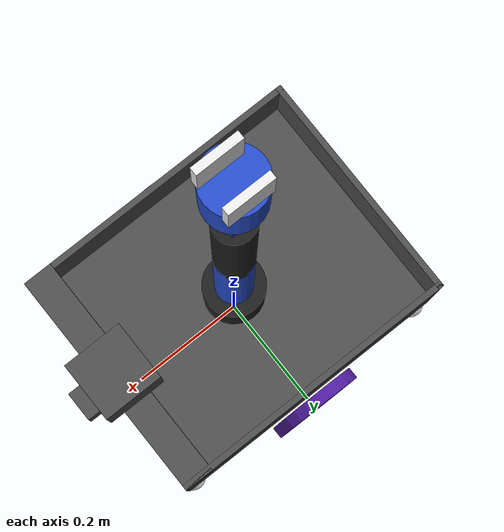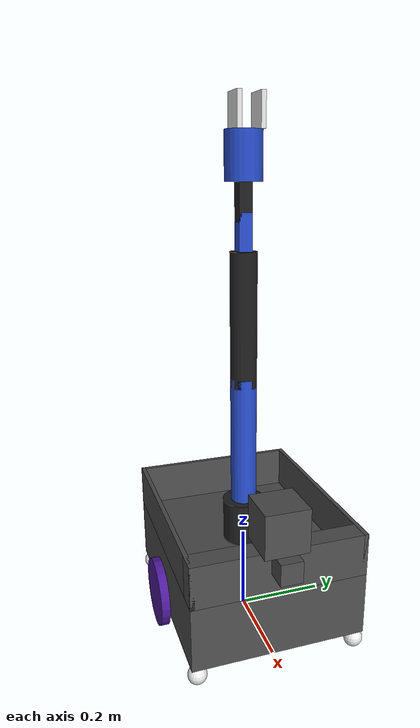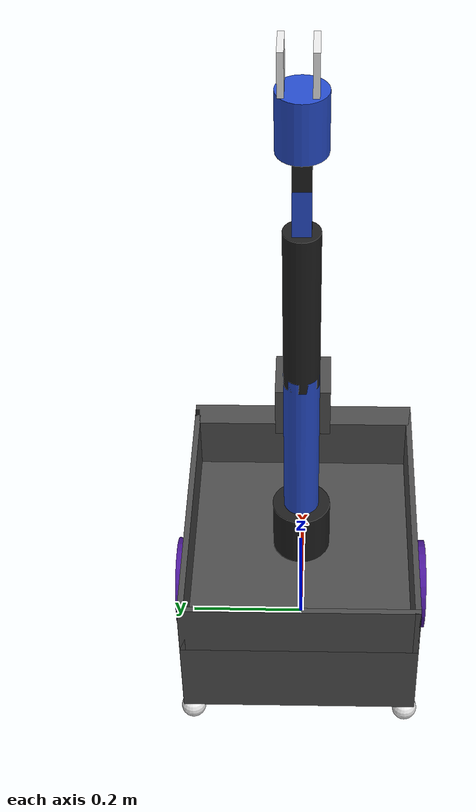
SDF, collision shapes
<sdf version="1.7">
 <model name="mixed_robot">
  <link name="robot_footprint">
   <inertial>
    <pose>0.001803 -0 0.118821 0 -0 0</pose>
    <mass>15.14</mass>
    <inertia>
     <ixx>0.232076</ixx>
     <ixy>-3.91032e-22</ixy>
     <ixz>-0.00406444</ixz>
     <iyy>0.352594</iyy>
     <iyz>-2.86479e-22</iyz>
     <izz>0.522614</izz>
    </inertia>
   </inertial>
   <sensor name="camera1" type="depth">
    <always_on>1</always_on>
    <update_rate>50</update_rate>
    <visualize>1</visualize>
    <camera>
     <horizontal_fov>1.047</horizontal_fov>
     <image><width>800</width><height>800</height><format>R8G8B8</format></image>
     <depth_camera><output>depths</output></depth_camera>
     <clip><near>0.1</near><far>20</far></clip>
     <noise><type>gaussian</type><mean>0</mean><stddev>0.007</stddev></noise>
    </camera>
    <plugin name="camera_controller" filename="libgazebo_ros_openni_kinect.so">
     <alwaysOn>1</alwaysOn>
     <updateRate>50.0</updateRate>
     <cameraName>camera</cameraName>
     <frameName>camera_link_optical</frameName>
     <imageTopicName>rgb/image_raw</imageTopicName>
     <depthImageTopicName>depth_registered/image_raw</depthImageTopicName>
     <pointCloudTopicName>depth_registered/points</pointCloudTopicName>
     <cameraInfoTopicName>rgb/camera_info</cameraInfoTopicName>
     <depthImageCameraInfoTopicName>depth_registered/camera_info</depthImageCameraInfoTopicName>
     <pointCloudCutoff>0.4</pointCloudCutoff>
     <hackBaseline>0.07</hackBaseline>
     <distortionK1>0.0</distortionK1>
     <distortionK2>0.0</distortionK2>
     <distortionK3>0.0</distortionK3>
     <distortionT1>0.0</distortionT1>
     <distortionT2>0.0</distortionT2>
     <CxPrime>0.0</CxPrime>
     <Cx>0.0</Cx>
     <Cy>0.0</Cy>
     <focalLength>0.0</focalLength>
     <robotNamespace>/</robotNamespace>
    </plugin>
    <pose>0.275 0 0.2675 0 -0 0</pose>
   </sensor>
   <sensor name="head_hokuyo_sensor" type="ray">
    <visualize>0</visualize>
    <update_rate>50</update_rate>
    <ray>
     <scan>
      <horizontal>
       <samples>720</samples>
       <resolution>1</resolution>
       <min_angle>-1.5708</min_angle>
       <max_angle>1.5708</max_angle>
      </horizontal>
      <vertical><samples>1</samples><min_angle>0</min_angle><max_angle>0</max_angle></vertical>
     </scan>
     <range><min>0.075</min><max>30</max><resolution>0.01</resolution></range>
     <noise><type>gaussian</type><mean>0</mean><stddev>0.01</stddev></noise>
    </ray>
    <plugin name="gazebo_ros_head_hokuyo_controller" filename="libgazebo_ros_laser.so">
     <topicName>scan</topicName>
     <frameName>hokuyo</frameName>
     <robotNamespace>/</robotNamespace>
    </plugin>
    <pose>0.225 0 0.3425 0 -0 0</pose>
   </sensor>
   <visual name="robot_footprint_fixed_joint_lump__base_chassis_visual_visual">
    <pose>0 0 0.1175 0 -0 0</pose>
    <geometry><box><size>0.5 0.4 0.15</size></box></geometry>
    <material>
     <script><name>Gazebo/DarkGrey</name><uri>file://media/materials/scripts/gazebo.material</uri></script>
     <shader type="pixel"/>
    </material>
   </visual>
   <visual name="robot_footprint_fixed_joint_lump__back_container_side_visual_visual_1">
    <pose>-0.245 0 0.2425 0 -0 0</pose>
    <geometry><box><size>0.01 0.4 0.1</size></box></geometry>
    <material><shader type="pixel"/></material>
   </visual>
   <visual name="robot_footprint_fixed_joint_lump__camera_link_visual_visual_2">
    <pose>0.275 0 0.2675 0 -0 0</pose>
    <geometry><box><size>0.05 0.05 0.05</size></box></geometry>
    <material>
     <script><name>Gazebo/Grey</name><uri>file://media/materials/scripts/gazebo.material</uri></script>
     <shader type="pixel"/>
    </material>
   </visual>
   <visual name="robot_footprint_fixed_joint_lump__front_container_side_visual_visual_3">
    <pose>0.225 0 0.2425 0 -0 0</pose>
    <geometry><box><size>0.05 0.4 0.1</size></box></geometry>
    <material><shader type="pixel"/></material>
   </visual>
   <visual name="robot_footprint_fixed_joint_lump__hokuyo_visual_visual_4">
    <pose>0.225 0 0.3425 0 -0 0</pose>
    <geometry>
     <mesh><scale>1 1 1</scale><uri>/home/lelyasa/project_ws/src/robot_2/models/meshes/hokuyo.dae</uri></mesh>
    </geometry>
    <material><shader type="pixel"/></material>
   </visual>
   <visual name="robot_footprint_fixed_joint_lump__left_container_side_visual_visual_5">
    <pose>0 0.195 0.2425 0 -0 0</pose>
    <geometry><box><size>0.5 0.01 0.1</size></box></geometry>
    <material><shader type="pixel"/></material>
   </visual>
   <visual name="robot_footprint_fixed_joint_lump__right_container_side_visual_visual_6">
    <pose>0 -0.195 0.2425 0 -0 0</pose>
    <geometry><box><size>0.5 0.01 0.1</size></box></geometry>
    <material><shader type="pixel"/></material>
   </visual>
   <collision name="robot_footprint_fixed_joint_lump__collision_collision">
    <pose>0 0 0.1175 0 -0 0</pose>
    <geometry><box><size>0.5 0.4 0.15</size></box></geometry>
    <surface>
     <friction>
      <ode><mu>1</mu><mu2>1</mu2><fdir1>0 0 0</fdir1><slip1>0</slip1><slip2>0</slip2></ode>
      <torsional>
       <coefficient>1</coefficient>
       <patch_radius>0</patch_radius>
       <surface_radius>0</surface_radius>
       <use_patch_radius>1</use_patch_radius>
       <ode><slip>0</slip></ode>
      </torsional>
     </friction>
     <bounce><restitution_coefficient>0</restitution_coefficient><threshold>1e+06</threshold></bounce>
     <contact>
      <collide_without_contact>0</collide_without_contact>
      <collide_without_contact_bitmask>1</collide_without_contact_bitmask>
      <collide_bitmask>1</collide_bitmask>
      <ode>
       <soft_cfm>0</soft_cfm>
       <soft_erp>0.2</soft_erp>
       <kp>1e+13</kp>
       <kd>1</kd>
       <max_vel>0.01</max_vel>
       <min_depth>0</min_depth>
      </ode>
      <bullet>
       <split_impulse>1</split_impulse>
       <split_impulse_penetration_threshold>-0.01</split_impulse_penetration_threshold>
       <soft_cfm>0</soft_cfm>
       <soft_erp>0.2</soft_erp>
       <kp>1e+13</kp>
       <kd>1</kd>
      </bullet>
     </contact>
    </surface>
   </collision>
   <collision name="robot_footprint_fixed_joint_lump__collision_collision_3">
    <pose>0.225 0 0.2425 0 -0 0</pose>
    <geometry><box><size>0.05 0.4 0.1</size></box></geometry>
    <surface>
     <friction>
      <ode><mu>1</mu><mu2>1</mu2><fdir1>0 0 0</fdir1><slip1>0</slip1><slip2>0</slip2></ode>
      <torsional>
       <coefficient>1</coefficient>
       <patch_radius>0</patch_radius>
       <surface_radius>0</surface_radius>
       <use_patch_radius>1</use_patch_radius>
       <ode><slip>0</slip></ode>
      </torsional>
     </friction>
     <bounce><restitution_coefficient>0</restitution_coefficient><threshold>1e+06</threshold></bounce>
     <contact>
      <collide_without_contact>0</collide_without_contact>
      <collide_without_contact_bitmask>1</collide_without_contact_bitmask>
      <collide_bitmask>1</collide_bitmask>
      <ode>
       <soft_cfm>0</soft_cfm>
       <soft_erp>0.2</soft_erp>
       <kp>1e+13</kp>
       <kd>1</kd>
       <max_vel>0.01</max_vel>
       <min_depth>0</min_depth>
      </ode>
      <bullet>
       <split_impulse>1</split_impulse>
       <split_impulse_penetration_threshold>-0.01</split_impulse_penetration_threshold>
       <soft_cfm>0</soft_cfm>
       <soft_erp>0.2</soft_erp>
       <kp>1e+13</kp>
       <kd>1</kd>
      </bullet>
     </contact>
    </surface>
   </collision>
   <collision name="robot_footprint_fixed_joint_lump__collision_collision_1">
    <pose>-0.245 0 0.2425 0 -0 0</pose>
    <geometry><box><size>0.01 0.4 0.1</size></box></geometry>
    <surface>
     <friction>
      <ode><mu>1</mu><mu2>1</mu2><fdir1>0 0 0</fdir1><slip1>0</slip1><slip2>0</slip2></ode>
      <torsional>
       <coefficient>1</coefficient>
       <patch_radius>0</patch_radius>
       <surface_radius>0</surface_radius>
       <use_patch_radius>1</use_patch_radius>
       <ode><slip>0</slip></ode>
      </torsional>
     </friction>
     <bounce><restitution_coefficient>0</restitution_coefficient><threshold>1e+06</threshold></bounce>
     <contact>
      <collide_without_contact>0</collide_without_contact>
      <collide_without_contact_bitmask>1</collide_without_contact_bitmask>
      <collide_bitmask>1</collide_bitmask>
      <ode>
       <soft_cfm>0</soft_cfm>
       <soft_erp>0.2</soft_erp>
       <kp>1e+13</kp>
       <kd>1</kd>
       <max_vel>0.01</max_vel>
       <min_depth>0</min_depth>
      </ode>
      <bullet>
       <split_impulse>1</split_impulse>
       <split_impulse_penetration_threshold>-0.01</split_impulse_penetration_threshold>
       <soft_cfm>0</soft_cfm>
       <soft_erp>0.2</soft_erp>
       <kp>1e+13</kp>
       <kd>1</kd>
      </bullet>
     </contact>
    </surface>
   </collision>
   <collision name="robot_footprint_fixed_joint_lump__camera_collision_collision_2">
    <pose>0.275 0 0.2675 0 -0 0</pose>
    <geometry><box><size>0.05 0.05 0.05</size></box></geometry>
    <surface>
     <friction>
      <ode><mu>1</mu><mu2>1</mu2><fdir1>0 0 0</fdir1><slip1>0</slip1><slip2>0</slip2></ode>
      <torsional>
       <coefficient>1</coefficient>
       <patch_radius>0</patch_radius>
       <surface_radius>0</surface_radius>
       <use_patch_radius>1</use_patch_radius>
       <ode><slip>0</slip></ode>
      </torsional>
     </friction>
     <bounce><restitution_coefficient>0</restitution_coefficient><threshold>1e+06</threshold></bounce>
     <contact>
      <collide_without_contact>0</collide_without_contact>
      <collide_without_contact_bitmask>1</collide_without_contact_bitmask>
      <collide_bitmask>1</collide_bitmask>
      <ode>
       <soft_cfm>0</soft_cfm>
       <soft_erp>0.2</soft_erp>
       <kp>1e+13</kp>
       <kd>1</kd>
       <max_vel>0.01</max_vel>
       <min_depth>0</min_depth>
      </ode>
      <bullet>
       <split_impulse>1</split_impulse>
       <split_impulse_penetration_threshold>-0.01</split_impulse_penetration_threshold>
       <soft_cfm>0</soft_cfm>
       <soft_erp>0.2</soft_erp>
       <kp>1e+13</kp>
       <kd>1</kd>
      </bullet>
     </contact>
    </surface>
   </collision>
   <collision name="robot_footprint_fixed_joint_lump__hokuyo_collision_collision_4">
    <pose>0.225 0 0.3425 0 -0 0</pose>
    <geometry><box><size>0.1 0.1 0.1</size></box></geometry>
    <surface>
     <friction>
      <ode><mu>1</mu><mu2>1</mu2><fdir1>0 0 0</fdir1><slip1>0</slip1><slip2>0</slip2></ode>
      <torsional>
       <coefficient>1</coefficient>
       <patch_radius>0</patch_radius>
       <surface_radius>0</surface_radius>
       <use_patch_radius>1</use_patch_radius>
       <ode><slip>0</slip></ode>
      </torsional>
     </friction>
     <bounce><restitution_coefficient>0</restitution_coefficient><threshold>1e+06</threshold></bounce>
     <contact>
      <collide_without_contact>0</collide_without_contact>
      <collide_without_contact_bitmask>1</collide_without_contact_bitmask>
      <collide_bitmask>1</collide_bitmask>
      <ode>
       <soft_cfm>0</soft_cfm>
       <soft_erp>0.2</soft_erp>
       <kp>1e+13</kp>
       <kd>1</kd>
       <max_vel>0.01</max_vel>
       <min_depth>0</min_depth>
      </ode>
      <bullet>
       <split_impulse>1</split_impulse>
       <split_impulse_penetration_threshold>-0.01</split_impulse_penetration_threshold>
       <soft_cfm>0</soft_cfm>
       <soft_erp>0.2</soft_erp>
       <kp>1e+13</kp>
       <kd>1</kd>
      </bullet>
     </contact>
    </surface>
   </collision>
   <collision name="robot_footprint_fixed_joint_lump__collision_collision_5">
    <pose>0 0.195 0.2425 0 -0 0</pose>
    <geometry><box><size>0.5 0.01 0.1</size></box></geometry>
    <surface>
     <friction>
      <ode><mu>1</mu><mu2>1</mu2><fdir1>0 0 0</fdir1><slip1>0</slip1><slip2>0</slip2></ode>
      <torsional>
       <coefficient>1</coefficient>
       <patch_radius>0</patch_radius>
       <surface_radius>0</surface_radius>
       <use_patch_radius>1</use_patch_radius>
       <ode><slip>0</slip></ode>
      </torsional>
     </friction>
     <bounce><restitution_coefficient>0</restitution_coefficient><threshold>1e+06</threshold></bounce>
     <contact>
      <collide_without_contact>0</collide_without_contact>
      <collide_without_contact_bitmask>1</collide_without_contact_bitmask>
      <collide_bitmask>1</collide_bitmask>
      <ode>
       <soft_cfm>0</soft_cfm>
       <soft_erp>0.2</soft_erp>
       <kp>1e+13</kp>
       <kd>1</kd>
       <max_vel>0.01</max_vel>
       <min_depth>0</min_depth>
      </ode>
      <bullet>
       <split_impulse>1</split_impulse>
       <split_impulse_penetration_threshold>-0.01</split_impulse_penetration_threshold>
       <soft_cfm>0</soft_cfm>
       <soft_erp>0.2</soft_erp>
       <kp>1e+13</kp>
       <kd>1</kd>
      </bullet>
     </contact>
    </surface>
   </collision>
   <collision name="robot_footprint_fixed_joint_lump__collision_collision_6">
    <pose>0 -0.195 0.2425 0 -0 0</pose>
    <geometry><box><size>0.5 0.01 0.1</size></box></geometry>
    <surface>
     <friction>
      <ode><mu>1</mu><mu2>1</mu2><fdir1>0 0 0</fdir1><slip1>0</slip1><slip2>0</slip2></ode>
      <torsional>
       <coefficient>1</coefficient>
       <patch_radius>0</patch_radius>
       <surface_radius>0</surface_radius>
       <use_patch_radius>1</use_patch_radius>
       <ode><slip>0</slip></ode>
      </torsional>
     </friction>
     <bounce><restitution_coefficient>0</restitution_coefficient><threshold>1e+06</threshold></bounce>
     <contact>
      <collide_without_contact>0</collide_without_contact>
      <collide_without_contact_bitmask>1</collide_without_contact_bitmask>
      <collide_bitmask>1</collide_bitmask>
      <ode>
       <soft_cfm>0</soft_cfm>
       <soft_erp>0.2</soft_erp>
       <kp>1e+13</kp>
       <kd>1</kd>
       <max_vel>0.01</max_vel>
       <min_depth>0</min_depth>
      </ode>
      <bullet>
       <split_impulse>1</split_impulse>
       <split_impulse_penetration_threshold>-0.01</split_impulse_penetration_threshold>
       <soft_cfm>0</soft_cfm>
       <soft_erp>0.2</soft_erp>
       <kp>1e+13</kp>
       <kd>1</kd>
      </bullet>
     </contact>
    </surface>
   </collision>
  </link>
  <link name="back_left_caster">
   <pose>-0.234375 0.184375 0.02125 0 -0 0</pose>
   <inertial>
    <mass>0.1</mass>
    <inertia>
     <ixx>1.80625e-05</ixx>
     <ixy>0</ixy>
     <ixz>0</ixz>
     <iyy>1.80625e-05</iyy>
     <iyz>0</iyz>
     <izz>1.80625e-05</izz>
    </inertia>
   </inertial>
   <visual name="back_left_caster_visual_visual">
    <geometry><sphere><radius>0.02125</radius></sphere></geometry>
    <material>
     <script><name>Gazebo/White</name><uri>file://media/materials/scripts/gazebo.material</uri></script>
     <shader type="pixel"/>
    </material>
   </visual>
   <collision name="back_left_caster_fixed_joint_lump__collision_collision">
    <geometry><sphere><radius>0.02125</radius></sphere></geometry>
    <surface>
     <friction>
      <ode><mu>1</mu><mu2>1</mu2><fdir1>0 0 0</fdir1><slip1>0</slip1><slip2>0</slip2></ode>
      <torsional>
       <coefficient>1</coefficient>
       <patch_radius>0</patch_radius>
       <surface_radius>0</surface_radius>
       <use_patch_radius>1</use_patch_radius>
       <ode><slip>0</slip></ode>
      </torsional>
     </friction>
     <bounce><restitution_coefficient>0</restitution_coefficient><threshold>1e+06</threshold></bounce>
     <contact>
      <collide_without_contact>0</collide_without_contact>
      <collide_without_contact_bitmask>1</collide_without_contact_bitmask>
      <collide_bitmask>1</collide_bitmask>
      <ode>
       <soft_cfm>0</soft_cfm>
       <soft_erp>0.2</soft_erp>
       <kp>1e+13</kp>
       <kd>1</kd>
       <max_vel>0.01</max_vel>
       <min_depth>0</min_depth>
      </ode>
      <bullet>
       <split_impulse>1</split_impulse>
       <split_impulse_penetration_threshold>-0.01</split_impulse_penetration_threshold>
       <soft_cfm>0</soft_cfm>
       <soft_erp>0.2</soft_erp>
       <kp>1e+13</kp>
       <kd>1</kd>
      </bullet>
     </contact>
    </surface>
   </collision>
  </link>
  <link name="back_right_caster">
   <pose>-0.234375 -0.184375 0.02125 0 -0 0</pose>
   <inertial>
    <mass>0.1</mass>
    <inertia>
     <ixx>1.80625e-05</ixx>
     <ixy>0</ixy>
     <ixz>0</ixz>
     <iyy>1.80625e-05</iyy>
     <iyz>0</iyz>
     <izz>1.80625e-05</izz>
    </inertia>
   </inertial>
   <visual name="back_right_caster_visual_visual">
    <geometry><sphere><radius>0.02125</radius></sphere></geometry>
    <material>
     <script><name>Gazebo/White</name><uri>file://media/materials/scripts/gazebo.material</uri></script>
     <shader type="pixel"/>
    </material>
   </visual>
   <collision name="back_right_caster_fixed_joint_lump__collision_collision">
    <geometry><sphere><radius>0.02125</radius></sphere></geometry>
    <surface>
     <friction>
      <ode><mu>1</mu><mu2>1</mu2><fdir1>0 0 0</fdir1><slip1>0</slip1><slip2>0</slip2></ode>
      <torsional>
       <coefficient>1</coefficient>
       <patch_radius>0</patch_radius>
       <surface_radius>0</surface_radius>
       <use_patch_radius>1</use_patch_radius>
       <ode><slip>0</slip></ode>
      </torsional>
     </friction>
     <bounce><restitution_coefficient>0</restitution_coefficient><threshold>1e+06</threshold></bounce>
     <contact>
      <collide_without_contact>0</collide_without_contact>
      <collide_without_contact_bitmask>1</collide_without_contact_bitmask>
      <collide_bitmask>1</collide_bitmask>
      <ode>
       <soft_cfm>0</soft_cfm>
       <soft_erp>0.2</soft_erp>
       <kp>1e+13</kp>
       <kd>1</kd>
       <max_vel>0.01</max_vel>
       <min_depth>0</min_depth>
      </ode>
      <bullet>
       <split_impulse>1</split_impulse>
       <split_impulse_penetration_threshold>-0.01</split_impulse_penetration_threshold>
       <soft_cfm>0</soft_cfm>
       <soft_erp>0.2</soft_erp>
       <kp>1e+13</kp>
       <kd>1</kd>
      </bullet>
     </contact>
    </surface>
   </collision>
  </link>
  <link name="finger1">
   <pose>-0 -0.025 1.1225 0 -0 0</pose>
   <inertial>
    <mass>0.1</mass>
    <inertia><ixx>0.03</ixx><ixy>0</ixy><ixz>0</ixz><iyy>0.03</iyy><iyz>0</iyz><izz>0.03</izz></inertia>
   </inertial>
   <slip1>0</slip1>
   <slip2>0</slip2>
   <torsional><ode><coefficient>1000</coefficient><slip>0</slip></ode></torsional>
   <visual name="finger1_visual">
    <pose>0.005 0.005 0.025 0 -0 0</pose>
    <geometry><box><size>0.06 0.01 0.07</size></box></geometry>
    <material>
     <script><name>Gazebo/White</name><uri>file://media/materials/scripts/gazebo.material</uri></script>
     <shader type="pixel"/>
    </material>
   </visual>
   <collision name="finger1_collision">
    <pose>0.005 0.005 0.025 0 -0 0</pose>
    <geometry><box><size>0.06 0.01 0.07</size></box></geometry>
    <surface>
     <friction>
      <ode><mu>1000</mu><mu2>1000</mu2><fdir1>0 0 0</fdir1><slip1>0</slip1><slip2>0</slip2></ode>
      <torsional>
       <coefficient>1</coefficient>
       <patch_radius>0</patch_radius>
       <surface_radius>0</surface_radius>
       <use_patch_radius>1</use_patch_radius>
       <ode><slip>0</slip></ode>
      </torsional>
     </friction>
     <bounce><restitution_coefficient>0</restitution_coefficient><threshold>1e+06</threshold></bounce>
     <contact>
      <collide_without_contact>0</collide_without_contact>
      <collide_without_contact_bitmask>1</collide_without_contact_bitmask>
      <collide_bitmask>1</collide_bitmask>
      <ode>
       <soft_cfm>0</soft_cfm>
       <soft_erp>0.2</soft_erp>
       <kp>1e+06</kp>
       <kd>1</kd>
       <max_vel>0</max_vel>
       <min_depth>0.001</min_depth>
      </ode>
      <bullet>
       <split_impulse>1</split_impulse>
       <split_impulse_penetration_threshold>-0.01</split_impulse_penetration_threshold>
       <soft_cfm>0</soft_cfm>
       <soft_erp>0.2</soft_erp>
       <kp>1e+06</kp>
       <kd>1</kd>
      </bullet>
     </contact>
    </surface>
   </collision>
  </link>
  <link name="finger2">
   <pose>0 0.025 1.1225 0 -0 0</pose>
   <inertial>
    <mass>0.1</mass>
    <inertia><ixx>0.03</ixx><ixy>0</ixy><ixz>0</ixz><iyy>0.03</iyy><iyz>0</iyz><izz>0.03</izz></inertia>
   </inertial>
   <slip1>0</slip1>
   <slip2>0</slip2>
   <torsional><ode><coefficient>1000</coefficient><slip>0</slip></ode></torsional>
   <visual name="finger2_visual">
    <pose>0.005 0.005 0.025 0 -0 0</pose>
    <geometry><box><size>0.06 0.01 0.07</size></box></geometry>
    <material>
     <script><name>Gazebo/White</name><uri>file://media/materials/scripts/gazebo.material</uri></script>
     <shader type="pixel"/>
    </material>
   </visual>
   <collision name="finger2_collision">
    <pose>0.005 0.005 0.025 0 -0 0</pose>
    <geometry><box><size>0.06 0.01 0.07</size></box></geometry>
    <surface>
     <friction>
      <ode><mu>1000</mu><mu2>1000</mu2><fdir1>0 0 0</fdir1><slip1>0</slip1><slip2>0</slip2></ode>
      <torsional>
       <coefficient>1</coefficient>
       <patch_radius>0</patch_radius>
       <surface_radius>0</surface_radius>
       <use_patch_radius>1</use_patch_radius>
       <ode><slip>0</slip></ode>
      </torsional>
     </friction>
     <bounce><restitution_coefficient>0</restitution_coefficient><threshold>1e+06</threshold></bounce>
     <contact>
      <collide_without_contact>0</collide_without_contact>
      <collide_without_contact_bitmask>1</collide_without_contact_bitmask>
      <collide_bitmask>1</collide_bitmask>
      <ode>
       <soft_cfm>0</soft_cfm>
       <soft_erp>0.2</soft_erp>
       <kp>1e+06</kp>
       <kd>1</kd>
       <max_vel>0</max_vel>
       <min_depth>0.001</min_depth>
      </ode>
      <bullet>
       <split_impulse>1</split_impulse>
       <split_impulse_penetration_threshold>-0.01</split_impulse_penetration_threshold>
       <soft_cfm>0</soft_cfm>
       <soft_erp>0.2</soft_erp>
       <kp>1e+06</kp>
       <kd>1</kd>
      </bullet>
     </contact>
    </surface>
   </collision>
  </link>
  <link name="front_left_caster">
   <pose>0.234375 0.184375 0.02125 0 -0 0</pose>
   <inertial>
    <mass>0.1</mass>
    <inertia>
     <ixx>1.80625e-05</ixx>
     <ixy>0</ixy>
     <ixz>0</ixz>
     <iyy>1.80625e-05</iyy>
     <iyz>0</iyz>
     <izz>1.80625e-05</izz>
    </inertia>
   </inertial>
   <visual name="front_left_caster_visual_visual">
    <geometry><sphere><radius>0.02125</radius></sphere></geometry>
    <material>
     <script><name>Gazebo/White</name><uri>file://media/materials/scripts/gazebo.material</uri></script>
     <shader type="pixel"/>
    </material>
   </visual>
   <collision name="front_left_caster_fixed_joint_lump__collision_collision">
    <geometry><sphere><radius>0.02125</radius></sphere></geometry>
    <surface>
     <friction>
      <ode><mu>1</mu><mu2>1</mu2><fdir1>0 0 0</fdir1><slip1>0</slip1><slip2>0</slip2></ode>
      <torsional>
       <coefficient>1</coefficient>
       <patch_radius>0</patch_radius>
       <surface_radius>0</surface_radius>
       <use_patch_radius>1</use_patch_radius>
       <ode><slip>0</slip></ode>
      </torsional>
     </friction>
     <bounce><restitution_coefficient>0</restitution_coefficient><threshold>1e+06</threshold></bounce>
     <contact>
      <collide_without_contact>0</collide_without_contact>
      <collide_without_contact_bitmask>1</collide_without_contact_bitmask>
      <collide_bitmask>1</collide_bitmask>
      <ode>
       <soft_cfm>0</soft_cfm>
       <soft_erp>0.2</soft_erp>
       <kp>1e+13</kp>
       <kd>1</kd>
       <max_vel>0.01</max_vel>
       <min_depth>0</min_depth>
      </ode>
      <bullet>
       <split_impulse>1</split_impulse>
       <split_impulse_penetration_threshold>-0.01</split_impulse_penetration_threshold>
       <soft_cfm>0</soft_cfm>
       <soft_erp>0.2</soft_erp>
       <kp>1e+13</kp>
       <kd>1</kd>
      </bullet>
     </contact>
    </surface>
   </collision>
  </link>
  <link name="front_right_caster">
   <pose>0.234375 -0.184375 0.02125 0 -0 0</pose>
   <inertial>
    <mass>0.1</mass>
    <inertia>
     <ixx>1.80625e-05</ixx>
     <ixy>0</ixy>
     <ixz>0</ixz>
     <iyy>1.80625e-05</iyy>
     <iyz>0</iyz>
     <izz>1.80625e-05</izz>
    </inertia>
   </inertial>
   <visual name="front_right_caster_visual_visual">
    <geometry><sphere><radius>0.02125</radius></sphere></geometry>
    <material>
     <script><name>Gazebo/White</name><uri>file://media/materials/scripts/gazebo.material</uri></script>
     <shader type="pixel"/>
    </material>
   </visual>
   <collision name="front_right_caster_fixed_joint_lump__collision_collision">
    <geometry><sphere><radius>0.02125</radius></sphere></geometry>
    <surface>
     <friction>
      <ode><mu>1</mu><mu2>1</mu2><fdir1>0 0 0</fdir1><slip1>0</slip1><slip2>0</slip2></ode>
      <torsional>
       <coefficient>1</coefficient>
       <patch_radius>0</patch_radius>
       <surface_radius>0</surface_radius>
       <use_patch_radius>1</use_patch_radius>
       <ode><slip>0</slip></ode>
      </torsional>
     </friction>
     <bounce><restitution_coefficient>0</restitution_coefficient><threshold>1e+06</threshold></bounce>
     <contact>
      <collide_without_contact>0</collide_without_contact>
      <collide_without_contact_bitmask>1</collide_without_contact_bitmask>
      <collide_bitmask>1</collide_bitmask>
      <ode>
       <soft_cfm>0</soft_cfm>
       <soft_erp>0.2</soft_erp>
       <kp>1e+13</kp>
       <kd>1</kd>
       <max_vel>0.01</max_vel>
       <min_depth>0</min_depth>
      </ode>
      <bullet>
       <split_impulse>1</split_impulse>
       <split_impulse_penetration_threshold>-0.01</split_impulse_penetration_threshold>
       <soft_cfm>0</soft_cfm>
       <soft_erp>0.2</soft_erp>
       <kp>1e+13</kp>
       <kd>1</kd>
      </bullet>
     </contact>
    </surface>
   </collision>
  </link>
  <link name="left_wheel">
   <pose>-0 0.215 0.08 0 -0 0</pose>
   <inertial>
    <pose>0 0 0 -0 1.5707 1.5707</pose>
    <mass>1</mass>
    <inertia>
     <ixx>0.00163333</ixx>
     <ixy>0</ixy>
     <ixz>0</ixz>
     <iyy>0.00163333</iyy>
     <iyz>0</iyz>
     <izz>0.0032</izz>
    </inertia>
   </inertial>
   <visual name="left_wheel_visual_visual">
    <pose>0 0 0 1.56615 1.57079 3.13685</pose>
    <geometry><cylinder><length>0.02</length><radius>0.08</radius></cylinder></geometry>
    <material>
     <script><name>Gazebo/Indigo</name><uri>file://media/materials/scripts/gazebo.material</uri></script>
     <shader type="pixel"/>
    </material>
   </visual>
   <collision name="left_wheel_fixed_joint_lump__collision_collision">
    <pose>0 0 0 1.57089 1.57079 -3.14159</pose>
    <geometry><cylinder><radius>0.08</radius><length>0.02</length></cylinder></geometry>
    <surface>
     <friction>
      <ode><mu>1</mu><mu2>1</mu2><fdir1>0 0 0</fdir1><slip1>0</slip1><slip2>0</slip2></ode>
      <torsional>
       <coefficient>1</coefficient>
       <patch_radius>0</patch_radius>
       <surface_radius>0</surface_radius>
       <use_patch_radius>1</use_patch_radius>
       <ode><slip>0</slip></ode>
      </torsional>
     </friction>
     <bounce><restitution_coefficient>0</restitution_coefficient><threshold>1e+06</threshold></bounce>
     <contact>
      <collide_without_contact>0</collide_without_contact>
      <collide_without_contact_bitmask>1</collide_without_contact_bitmask>
      <collide_bitmask>1</collide_bitmask>
      <ode>
       <soft_cfm>0</soft_cfm>
       <soft_erp>0.2</soft_erp>
       <kp>1e+13</kp>
       <kd>1</kd>
       <max_vel>0.01</max_vel>
       <min_depth>0</min_depth>
      </ode>
      <bullet>
       <split_impulse>1</split_impulse>
       <split_impulse_penetration_threshold>-0.01</split_impulse_penetration_threshold>
       <soft_cfm>0</soft_cfm>
       <soft_erp>0.2</soft_erp>
       <kp>1e+13</kp>
       <kd>1</kd>
      </bullet>
     </contact>
    </surface>
   </collision>
  </link>
  <link name="link1">
   <pose>0 -0 0.1675 0 -0 0</pose>
   <inertial>
    <mass>0.1</mass>
    <inertia><ixx>0.03</ixx><ixy>0</ixy><ixz>0</ixz><iyy>0.03</iyy><iyz>0</iyz><izz>0.03</izz></inertia>
   </inertial>
   <visual name="link1_visual">
    <pose>0 0 0.075 0 -0 0</pose>
    <geometry><cylinder><length>0.1</length><radius>0.05</radius></cylinder></geometry>
    <material>
     <script><name>Gazebo/Black</name><uri>file://media/materials/scripts/gazebo.material</uri></script>
     <shader type="pixel"/>
    </material>
   </visual>
   <collision name="link1_collision">
    <pose>0 0 0.075 0 -0 0</pose>
    <geometry><cylinder><radius>0.05</radius><length>0.1</length></cylinder></geometry>
    <surface>
     <friction>
      <ode><mu>1</mu><mu2>1</mu2><fdir1>0 0 0</fdir1><slip1>0</slip1><slip2>0</slip2></ode>
      <torsional>
       <coefficient>1</coefficient>
       <patch_radius>0</patch_radius>
       <surface_radius>0</surface_radius>
       <use_patch_radius>1</use_patch_radius>
       <ode><slip>0</slip></ode>
      </torsional>
     </friction>
     <bounce><restitution_coefficient>0</restitution_coefficient><threshold>1e+06</threshold></bounce>
     <contact>
      <collide_without_contact>0</collide_without_contact>
      <collide_without_contact_bitmask>1</collide_without_contact_bitmask>
      <collide_bitmask>1</collide_bitmask>
      <ode>
       <soft_cfm>0</soft_cfm>
       <soft_erp>0.2</soft_erp>
       <kp>1e+13</kp>
       <kd>1</kd>
       <max_vel>0.01</max_vel>
       <min_depth>0</min_depth>
      </ode>
      <bullet>
       <split_impulse>1</split_impulse>
       <split_impulse_penetration_threshold>-0.01</split_impulse_penetration_threshold>
       <soft_cfm>0</soft_cfm>
       <soft_erp>0.2</soft_erp>
       <kp>1e+13</kp>
       <kd>1</kd>
      </bullet>
     </contact>
    </surface>
   </collision>
  </link>
  <link name="link2">
   <pose>0 -0 0.2925 0 -0 0</pose>
   <inertial>
    <mass>0.1</mass>
    <inertia><ixx>0.03</ixx><ixy>0</ixy><ixz>0</ixz><iyy>0.03</iyy><iyz>0</iyz><izz>0.03</izz></inertia>
   </inertial>
   <visual name="link2_visual">
    <pose>0 0 0.15 0 -0 0</pose>
    <geometry><cylinder><length>0.3</length><radius>0.03</radius></cylinder></geometry>
    <material>
     <script><name>Gazebo/Blue</name><uri>file://media/materials/scripts/gazebo.material</uri></script>
     <shader type="pixel"/>
    </material>
   </visual>
   <collision name="link2_collision">
    <pose>0 0 0.15 0 -0 0</pose>
    <geometry><cylinder><radius>0.03</radius><length>0.3</length></cylinder></geometry>
    <surface>
     <friction>
      <ode><mu>1</mu><mu2>1</mu2><fdir1>0 0 0</fdir1><slip1>0</slip1><slip2>0</slip2></ode>
      <torsional>
       <coefficient>1</coefficient>
       <patch_radius>0</patch_radius>
       <surface_radius>0</surface_radius>
       <use_patch_radius>1</use_patch_radius>
       <ode><slip>0</slip></ode>
      </torsional>
     </friction>
     <bounce><restitution_coefficient>0</restitution_coefficient><threshold>1e+06</threshold></bounce>
     <contact>
      <collide_without_contact>0</collide_without_contact>
      <collide_without_contact_bitmask>1</collide_without_contact_bitmask>
      <collide_bitmask>1</collide_bitmask>
      <ode>
       <soft_cfm>0</soft_cfm>
       <soft_erp>0.2</soft_erp>
       <kp>1e+13</kp>
       <kd>1</kd>
       <max_vel>0.01</max_vel>
       <min_depth>0</min_depth>
      </ode>
      <bullet>
       <split_impulse>1</split_impulse>
       <split_impulse_penetration_threshold>-0.01</split_impulse_penetration_threshold>
       <soft_cfm>0</soft_cfm>
       <soft_erp>0.2</soft_erp>
       <kp>1e+13</kp>
       <kd>1</kd>
      </bullet>
     </contact>
    </surface>
   </collision>
  </link>
  <link name="link3">
   <pose>-0 0 0.5725 0 -0 0</pose>
   <inertial>
    <mass>0.1</mass>
    <inertia><ixx>0.03</ixx><ixy>0</ixy><ixz>0</ixz><iyy>0.03</iyy><iyz>0</iyz><izz>0.03</izz></inertia>
   </inertial>
   <visual name="link3_visual">
    <pose>0 0 0.15 0 -0 0</pose>
    <geometry><cylinder><length>0.3</length><radius>0.03</radius></cylinder></geometry>
    <material>
     <script><name>Gazebo/Black</name><uri>file://media/materials/scripts/gazebo.material</uri></script>
     <shader type="pixel"/>
    </material>
   </visual>
   <collision name="link3_collision">
    <pose>0 0 0.15 0 -0 0</pose>
    <geometry><cylinder><radius>0.03</radius><length>0.3</length></cylinder></geometry>
    <surface>
     <friction>
      <ode><mu>1</mu><mu2>1</mu2><fdir1>0 0 0</fdir1><slip1>0</slip1><slip2>0</slip2></ode>
      <torsional>
       <coefficient>1</coefficient>
       <patch_radius>0</patch_radius>
       <surface_radius>0</surface_radius>
       <use_patch_radius>1</use_patch_radius>
       <ode><slip>0</slip></ode>
      </torsional>
     </friction>
     <bounce><restitution_coefficient>0</restitution_coefficient><threshold>1e+06</threshold></bounce>
     <contact>
      <collide_without_contact>0</collide_without_contact>
      <collide_without_contact_bitmask>1</collide_without_contact_bitmask>
      <collide_bitmask>1</collide_bitmask>
      <ode>
       <soft_cfm>0</soft_cfm>
       <soft_erp>0.2</soft_erp>
       <kp>1e+13</kp>
       <kd>1</kd>
       <max_vel>0.01</max_vel>
       <min_depth>0</min_depth>
      </ode>
      <bullet>
       <split_impulse>1</split_impulse>
       <split_impulse_penetration_threshold>-0.01</split_impulse_penetration_threshold>
       <soft_cfm>0</soft_cfm>
       <soft_erp>0.2</soft_erp>
       <kp>1e+13</kp>
       <kd>1</kd>
      </bullet>
     </contact>
    </surface>
   </collision>
  </link>
  <link name="link4">
   <pose>-0 0 0.8525 0 -0 0</pose>
   <inertial>
    <mass>0.1</mass>
    <inertia><ixx>0.03</ixx><ixy>0</ixy><ixz>0</ixz><iyy>0.03</iyy><iyz>0</iyz><izz>0.03</izz></inertia>
   </inertial>
   <visual name="link4_visual">
    <pose>0 0 0.05 0 -0 0</pose>
    <geometry><box><size>0.03 0.03 0.1</size></box></geometry>
    <material>
     <script><name>Gazebo/Blue</name><uri>file://media/materials/scripts/gazebo.material</uri></script>
     <shader type="pixel"/>
    </material>
   </visual>
   <collision name="link4_collision">
    <pose>0 0 0.05 0 -0 0</pose>
    <geometry><box><size>0.03 0.03 0.1</size></box></geometry>
    <surface>
     <friction>
      <ode><mu>1</mu><mu2>1</mu2><fdir1>0 0 0</fdir1><slip1>0</slip1><slip2>0</slip2></ode>
      <torsional>
       <coefficient>1</coefficient>
       <patch_radius>0</patch_radius>
       <surface_radius>0</surface_radius>
       <use_patch_radius>1</use_patch_radius>
       <ode><slip>0</slip></ode>
      </torsional>
     </friction>
     <bounce><restitution_coefficient>0</restitution_coefficient><threshold>1e+06</threshold></bounce>
     <contact>
      <collide_without_contact>0</collide_without_contact>
      <collide_without_contact_bitmask>1</collide_without_contact_bitmask>
      <collide_bitmask>1</collide_bitmask>
      <ode>
       <soft_cfm>0</soft_cfm>
       <soft_erp>0.2</soft_erp>
       <kp>1e+13</kp>
       <kd>1</kd>
       <max_vel>0.01</max_vel>
       <min_depth>0</min_depth>
      </ode>
      <bullet>
       <split_impulse>1</split_impulse>
       <split_impulse_penetration_threshold>-0.01</split_impulse_penetration_threshold>
       <soft_cfm>0</soft_cfm>
       <soft_erp>0.2</soft_erp>
       <kp>1e+13</kp>
       <kd>1</kd>
      </bullet>
     </contact>
    </surface>
   </collision>
  </link>
  <link name="link5">
   <pose>0 -0 0.9325 0 -0 0</pose>
   <inertial>
    <mass>0.1</mass>
    <inertia><ixx>0.03</ixx><ixy>0</ixy><ixz>0</ixz><iyy>0.03</iyy><iyz>0</iyz><izz>0.03</izz></inertia>
   </inertial>
   <visual name="link5_visual">
    <pose>0 0 0.05 0 -0 0</pose>
    <geometry><box><size>0.03 0.03 0.1</size></box></geometry>
    <material>
     <script><name>Gazebo/Black</name><uri>file://media/materials/scripts/gazebo.material</uri></script>
     <shader type="pixel"/>
    </material>
   </visual>
   <collision name="link5_collision">
    <pose>0 0 0.05 0 -0 0</pose>
    <geometry><box><size>0.03 0.03 0.1</size></box></geometry>
    <surface>
     <friction>
      <ode><mu>1</mu><mu2>1</mu2><fdir1>0 0 0</fdir1><slip1>0</slip1><slip2>0</slip2></ode>
      <torsional>
       <coefficient>1</coefficient>
       <patch_radius>0</patch_radius>
       <surface_radius>0</surface_radius>
       <use_patch_radius>1</use_patch_radius>
       <ode><slip>0</slip></ode>
      </torsional>
     </friction>
     <bounce><restitution_coefficient>0</restitution_coefficient><threshold>1e+06</threshold></bounce>
     <contact>
      <collide_without_contact>0</collide_without_contact>
      <collide_without_contact_bitmask>1</collide_without_contact_bitmask>
      <collide_bitmask>1</collide_bitmask>
      <ode>
       <soft_cfm>0</soft_cfm>
       <soft_erp>0.2</soft_erp>
       <kp>1e+13</kp>
       <kd>1</kd>
       <max_vel>0.01</max_vel>
       <min_depth>0</min_depth>
      </ode>
      <bullet>
       <split_impulse>1</split_impulse>
       <split_impulse_penetration_threshold>-0.01</split_impulse_penetration_threshold>
       <soft_cfm>0</soft_cfm>
       <soft_erp>0.2</soft_erp>
       <kp>1e+13</kp>
       <kd>1</kd>
      </bullet>
     </contact>
    </surface>
   </collision>
  </link>
  <link name="link6">
   <pose>-0 0 1.0125 0 -0 0</pose>
   <inertial>
    <mass>0.1</mass>
    <inertia><ixx>0.03</ixx><ixy>0</ixy><ixz>0</ixz><iyy>0.03</iyy><iyz>0</iyz><izz>0.03</izz></inertia>
   </inertial>
   <visual name="link6_visual">
    <pose>0 0 0.05 0 -0 0</pose>
    <geometry><cylinder><length>0.1</length><radius>0.04</radius></cylinder></geometry>
    <material>
     <script><name>Gazebo/Blue</name><uri>file://media/materials/scripts/gazebo.material</uri></script>
     <shader type="pixel"/>
    </material>
   </visual>
   <collision name="link6_collision">
    <pose>0 0 0.05 0 -0 0</pose>
    <geometry><cylinder><radius>0.04</radius><length>0.1</length></cylinder></geometry>
    <surface>
     <friction>
      <ode><mu>1</mu><mu2>1</mu2><fdir1>0 0 0</fdir1><slip1>0</slip1><slip2>0</slip2></ode>
      <torsional>
       <coefficient>1</coefficient>
       <patch_radius>0</patch_radius>
       <surface_radius>0</surface_radius>
       <use_patch_radius>1</use_patch_radius>
       <ode><slip>0</slip></ode>
      </torsional>
     </friction>
     <bounce><restitution_coefficient>0</restitution_coefficient><threshold>1e+06</threshold></bounce>
     <contact>
      <collide_without_contact>0</collide_without_contact>
      <collide_without_contact_bitmask>1</collide_without_contact_bitmask>
      <collide_bitmask>1</collide_bitmask>
      <ode>
       <soft_cfm>0</soft_cfm>
       <soft_erp>0.2</soft_erp>
       <kp>1e+13</kp>
       <kd>1</kd>
       <max_vel>0.01</max_vel>
       <min_depth>0</min_depth>
      </ode>
      <bullet>
       <split_impulse>1</split_impulse>
       <split_impulse_penetration_threshold>-0.01</split_impulse_penetration_threshold>
       <soft_cfm>0</soft_cfm>
       <soft_erp>0.2</soft_erp>
       <kp>1e+13</kp>
       <kd>1</kd>
      </bullet>
     </contact>
    </surface>
   </collision>
  </link>
  <link name="right_wheel">
   <pose>-0 -0.215 0.08 0 -0 0</pose>
   <inertial>
    <pose>0 0 0 -0 1.5707 1.5707</pose>
    <mass>1</mass>
    <inertia>
     <ixx>0.00163333</ixx>
     <ixy>0</ixy>
     <ixz>0</ixz>
     <iyy>0.00163333</iyy>
     <iyz>0</iyz>
     <izz>0.0032</izz>
    </inertia>
   </inertial>
   <visual name="right_wheel_visual_visual">
    <pose>0 0 0 1.56615 1.57079 3.13685</pose>
    <geometry><cylinder><length>0.02</length><radius>0.08</radius></cylinder></geometry>
    <material>
     <script><name>Gazebo/Indigo</name><uri>file://media/materials/scripts/gazebo.material</uri></script>
     <shader type="pixel"/>
    </material>
   </visual>
   <collision name="right_wheel_fixed_joint_lump__collision_collision">
    <pose>0 0 0 1.57089 1.57079 -3.14159</pose>
    <geometry><cylinder><radius>0.08</radius><length>0.02</length></cylinder></geometry>
    <surface>
     <friction>
      <ode><mu>1</mu><mu2>1</mu2><fdir1>0 0 0</fdir1><slip1>0</slip1><slip2>0</slip2></ode>
      <torsional>
       <coefficient>1</coefficient>
       <patch_radius>0</patch_radius>
       <surface_radius>0</surface_radius>
       <use_patch_radius>1</use_patch_radius>
       <ode><slip>0</slip></ode>
      </torsional>
     </friction>
     <bounce><restitution_coefficient>0</restitution_coefficient><threshold>1e+06</threshold></bounce>
     <contact>
      <collide_without_contact>0</collide_without_contact>
      <collide_without_contact_bitmask>1</collide_without_contact_bitmask>
      <collide_bitmask>1</collide_bitmask>
      <ode>
       <soft_cfm>0</soft_cfm>
       <soft_erp>0.2</soft_erp>
       <kp>1e+13</kp>
       <kd>1</kd>
       <max_vel>0.01</max_vel>
       <min_depth>0</min_depth>
      </ode>
      <bullet>
       <split_impulse>1</split_impulse>
       <split_impulse_penetration_threshold>-0.01</split_impulse_penetration_threshold>
       <soft_cfm>0</soft_cfm>
       <soft_erp>0.2</soft_erp>
       <kp>1e+13</kp>
       <kd>1</kd>
      </bullet>
     </contact>
    </surface>
   </collision>
  </link>
  <joint name="back_left_caster_hinge" type="revolute">
   <parent>robot_footprint</parent>
   <child>back_left_caster</child>
   <axis>
    <xyz>1 1 1</xyz>
    <limit><lower>-1e+16</lower><upper>1e+16</upper><effort>-1</effort><velocity>-1</velocity></limit>
    <dynamics>
     <spring_reference>0</spring_reference>
     <spring_stiffness>0</spring_stiffness>
     <damping>0.001</damping>
     <friction>0.0001</friction>
    </dynamics>
   </axis>
   <physics>
    <ode><limit><cfm>0</cfm><erp>0.2</erp></limit><suspension><cfm>0</cfm><erp>0.2</erp></suspension></ode>
   </physics>
  </joint>
  <joint name="back_right_caster_hinge" type="revolute">
   <parent>robot_footprint</parent>
   <child>back_right_caster</child>
   <axis>
    <xyz>1 1 1</xyz>
    <limit><lower>-1e+16</lower><upper>1e+16</upper><effort>-1</effort><velocity>-1</velocity></limit>
    <dynamics>
     <spring_reference>0</spring_reference>
     <spring_stiffness>0</spring_stiffness>
     <damping>0.001</damping>
     <friction>0.0001</friction>
    </dynamics>
   </axis>
   <physics>
    <ode><limit><cfm>0</cfm><erp>0.2</erp></limit><suspension><cfm>0</cfm><erp>0.2</erp></suspension></ode>
   </physics>
  </joint>
  <joint name="f_joint1" type="prismatic">
   <parent>link6</parent>
   <child>finger1</child>
   <axis>
    <xyz>0 1 0</xyz>
    <limit><lower>-0.005</lower><upper>0.02</upper><effort>20</effort><velocity>1</velocity></limit>
    <dynamics>
     <spring_reference>0</spring_reference>
     <spring_stiffness>0</spring_stiffness>
     <damping>0.1</damping>
     <friction>1</friction>
    </dynamics>
   </axis>
   <physics>
    <ode><limit><cfm>0</cfm><erp>0.2</erp></limit><suspension><cfm>0</cfm><erp>0.2</erp></suspension></ode>
   </physics>
  </joint>
  <joint name="f_joint2" type="prismatic">
   <parent>link6</parent>
   <child>finger2</child>
   <axis>
    <xyz>0 1 0</xyz>
    <limit><lower>-0.02</lower><upper>0.005</upper><effort>20</effort><velocity>1</velocity></limit>
    <dynamics>
     <spring_reference>0</spring_reference>
     <spring_stiffness>0</spring_stiffness>
     <damping>0.1</damping>
     <friction>1</friction>
    </dynamics>
   </axis>
   <physics>
    <ode><limit><cfm>0</cfm><erp>0.2</erp></limit><suspension><cfm>0</cfm><erp>0.2</erp></suspension></ode>
   </physics>
  </joint>
  <joint name="front_left_caster_hinge" type="revolute">
   <parent>robot_footprint</parent>
   <child>front_left_caster</child>
   <axis>
    <xyz>1 1 1</xyz>
    <limit><lower>-1e+16</lower><upper>1e+16</upper><effort>-1</effort><velocity>-1</velocity></limit>
    <dynamics>
     <spring_reference>0</spring_reference>
     <spring_stiffness>0</spring_stiffness>
     <damping>0.001</damping>
     <friction>0.0001</friction>
    </dynamics>
   </axis>
   <physics>
    <ode><limit><cfm>0</cfm><erp>0.2</erp></limit><suspension><cfm>0</cfm><erp>0.2</erp></suspension></ode>
   </physics>
  </joint>
  <joint name="front_right_caster_hinge" type="revolute">
   <parent>robot_footprint</parent>
   <child>front_right_caster</child>
   <axis>
    <xyz>1 1 1</xyz>
    <limit><lower>-1e+16</lower><upper>1e+16</upper><effort>-1</effort><velocity>-1</velocity></limit>
    <dynamics>
     <spring_reference>0</spring_reference>
     <spring_stiffness>0</spring_stiffness>
     <damping>0.001</damping>
     <friction>0.0001</friction>
    </dynamics>
   </axis>
   <physics>
    <ode><limit><cfm>0</cfm><erp>0.2</erp></limit><suspension><cfm>0</cfm><erp>0.2</erp></suspension></ode>
   </physics>
  </joint>
  <joint name="joint1" type="revolute">
   <parent>robot_footprint</parent>
   <child>link1</child>
   <axis>
    <xyz>0 0 1</xyz>
    <limit><lower>-6.28319</lower><upper>6.28319</upper><effort>100</effort><velocity>1</velocity></limit>
    <dynamics>
     <spring_reference>0</spring_reference>
     <spring_stiffness>0</spring_stiffness>
     <damping>0.01</damping>
     <friction>0.01</friction>
    </dynamics>
   </axis>
   <physics>
    <ode><limit><cfm>0</cfm><erp>0.2</erp></limit><suspension><cfm>0</cfm><erp>0.2</erp></suspension></ode>
   </physics>
  </joint>
  <joint name="joint2" type="revolute">
   <parent>link1</parent>
   <child>link2</child>
   <axis>
    <xyz>0 1 0</xyz>
    <limit><lower>-1.57</lower><upper>1.57</upper><effort>100</effort><velocity>1</velocity></limit>
    <dynamics>
     <spring_reference>0</spring_reference>
     <spring_stiffness>0</spring_stiffness>
     <damping>0.01</damping>
     <friction>0.01</friction>
    </dynamics>
   </axis>
   <physics>
    <ode><limit><cfm>0</cfm><erp>0.2</erp></limit><suspension><cfm>0</cfm><erp>0.2</erp></suspension></ode>
   </physics>
  </joint>
  <joint name="joint3" type="revolute">
   <parent>link2</parent>
   <child>link3</child>
   <axis>
    <xyz>0 1 0</xyz>
    <limit><lower>-2.57</lower><upper>2.57</upper><effort>100</effort><velocity>1</velocity></limit>
    <dynamics>
     <spring_reference>0</spring_reference>
     <spring_stiffness>0</spring_stiffness>
     <damping>0.01</damping>
     <friction>0.01</friction>
    </dynamics>
   </axis>
   <physics>
    <ode><limit><cfm>0</cfm><erp>0.2</erp></limit><suspension><cfm>0</cfm><erp>0.2</erp></suspension></ode>
   </physics>
  </joint>
  <joint name="joint4" type="revolute">
   <parent>link3</parent>
   <child>link4</child>
   <axis>
    <xyz>0 0 1</xyz>
    <limit><lower>-3.14</lower><upper>3.14</upper><effort>100</effort><velocity>1</velocity></limit>
    <dynamics>
     <spring_reference>0</spring_reference>
     <spring_stiffness>0</spring_stiffness>
     <damping>0.01</damping>
     <friction>0.01</friction>
    </dynamics>
   </axis>
   <physics>
    <ode><limit><cfm>0</cfm><erp>0.2</erp></limit><suspension><cfm>0</cfm><erp>0.2</erp></suspension></ode>
   </physics>
  </joint>
  <joint name="joint5" type="revolute">
   <parent>link4</parent>
   <child>link5</child>
   <axis>
    <xyz>0 1 0</xyz>
    <limit><lower>-2.57</lower><upper>2.57</upper><effort>100</effort><velocity>1</velocity></limit>
    <dynamics>
     <spring_reference>0</spring_reference>
     <spring_stiffness>0</spring_stiffness>
     <damping>0.01</damping>
     <friction>0.01</friction>
    </dynamics>
   </axis>
   <physics>
    <ode><limit><cfm>0</cfm><erp>0.2</erp></limit><suspension><cfm>0</cfm><erp>0.2</erp></suspension></ode>
   </physics>
  </joint>
  <joint name="joint6" type="revolute">
   <parent>link5</parent>
   <child>link6</child>
   <axis>
    <xyz>1 0 0</xyz>
    <limit><lower>-2.57</lower><upper>2.57</upper><effort>100</effort><velocity>1</velocity></limit>
    <dynamics>
     <spring_reference>0</spring_reference>
     <spring_stiffness>0</spring_stiffness>
     <damping>0.01</damping>
     <friction>0.01</friction>
    </dynamics>
   </axis>
   <physics>
    <ode><limit><cfm>0</cfm><erp>0.2</erp></limit><suspension><cfm>0</cfm><erp>0.2</erp></suspension></ode>
   </physics>
  </joint>
  <joint name="left_wheel_hinge" type="revolute">
   <parent>robot_footprint</parent>
   <child>left_wheel</child>
   <axis>
    <xyz>0 1 0</xyz>
    <limit><lower>-1e+16</lower><upper>1e+16</upper><effort>-1</effort><velocity>-1</velocity></limit>
    <dynamics>
     <spring_reference>0</spring_reference>
     <spring_stiffness>0</spring_stiffness>
     <damping>1</damping>
     <friction>1</friction>
    </dynamics>
   </axis>
   <physics>
    <ode><limit><cfm>0</cfm><erp>0.2</erp></limit><suspension><cfm>0</cfm><erp>0.2</erp></suspension></ode>
   </physics>
  </joint>
  <joint name="right_wheel_hinge" type="revolute">
   <parent>robot_footprint</parent>
   <child>right_wheel</child>
   <axis>
    <xyz>0 1 0</xyz>
    <limit><lower>-1e+16</lower><upper>1e+16</upper><effort>-1</effort><velocity>-1</velocity></limit>
    <dynamics>
     <spring_reference>0</spring_reference>
     <spring_stiffness>0</spring_stiffness>
     <damping>1</damping>
     <friction>1</friction>
    </dynamics>
   </axis>
   <physics>
    <ode><limit><cfm>0</cfm><erp>0.2</erp></limit><suspension><cfm>0</cfm><erp>0.2</erp></suspension></ode>
   </physics>
  </joint>
  <static>0</static>
  <plugin name="differential_drive_controller" filename="libgazebo_ros_diff_drive.so">
   <updateRate>50</updateRate>
   <leftJoint>left_wheel_hinge</leftJoint>
   <rightJoint>right_wheel_hinge</rightJoint>
   <wheelSeparation>0.43</wheelSeparation>
   <wheelDiameter>0.16</wheelDiameter>
   <wheelAcceleration>1.0</wheelAcceleration>
   <wheelTorque>20</wheelTorque>
   <commandTopic>cmd_vel</commandTopic>
   <odometryTopic>odom</odometryTopic>
   <odometryFrame>odom</odometryFrame>
   <robotBaseFrame>robot_footprint</robotBaseFrame>
   <odometrySource>world</odometrySource>
   <publishWheelTF>0</publishWheelTF>
   <publishOdomTF>0</publishOdomTF>
   <publishWheelJointState>0</publishWheelJointState>
   <legacyMode>0</legacyMode>
   <alwaysOn>1</alwaysOn>
   <rosDebugLevel>na</rosDebugLevel>
   <publishTf>0</publishTf>
   <robotNamespace>/</robotNamespace>
  </plugin>
  <plugin name="gazebo_grasp_fix" filename="libgazebo_grasp_fix.so">
   <frameId>link6</frameId>
   <arm>
    <arm_name>arm</arm_name>
    <palm_link>link6</palm_link>
    <gripper_link>finger1</gripper_link>
    <gripper_link>finger2</gripper_link>
   </arm>
   <forces_angle_tolerance>100</forces_angle_tolerance>
   <update_rate>5</update_rate>
   <grip_count_threshold>4</grip_count_threshold>
   <max_grip_count>8</max_grip_count>
   <release_tolerance>0.005</release_tolerance>
   <disable_collisions_on_attach>0</disable_collisions_on_attach>
   <contact_topic>__default_topic__</contact_topic>
   <robotNamespace>/</robotNamespace>
  </plugin>
  <plugin name="gazebo_ros_control" filename="libgazebo_ros_control.so">
   <robotSimType>gazebo_ros_control/DefaultRobotHWSim</robotSimType>
   <robotNamespace>/</robotNamespace>
  </plugin>
  <plugin name="p3d_base_controller" filename="libgazebo_ros_p3d.so">
   <alwaysOn>1</alwaysOn>
   <updateRate>50.0</updateRate>
   <bodyName>robot_footprint</bodyName>
   <topicName>odom</topicName>
   <gaussianNoise>0.01</gaussianNoise>
   <frameName>world</frameName>
   <xyzOffsets>0 0 0</xyzOffsets>
   <rpyOffsets>0 0 0</rpyOffsets>
   <robotNamespace>/</robotNamespace>
  </plugin>
 </model>
</sdf>
